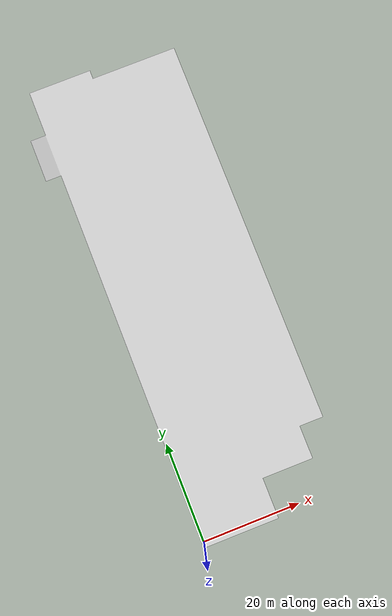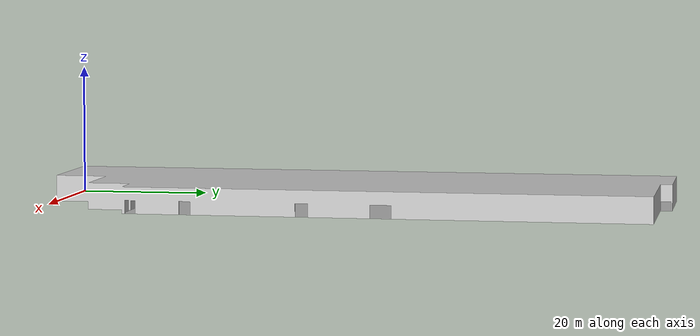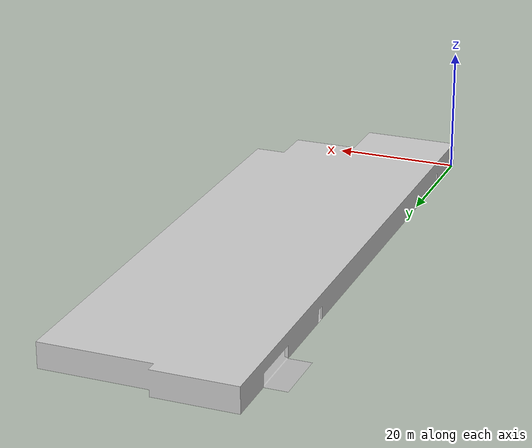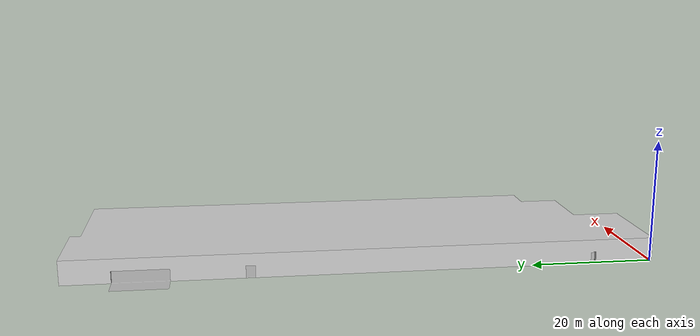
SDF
<?xml version='1.0'?>
<sdf version='1.7'>
  <model name='factory_v1'>

    <link name='link_0'>

      <pose>0 0 0 0 0 0</pose>
      <gravity>1</gravity>
      <self_collide>0</self_collide>
      <kinematic>0</kinematic>
      <enable_wind>0</enable_wind>

      <visual name='visual'>
        <pose>0 0 0 0 0 0</pose>
        <geometry>
          <mesh>
            <uri>model://factory_v1/meshes/factory.dae</uri>
            <scale>1 1 1</scale>
          </mesh>
        </geometry>
        <transparency>0</transparency>
        <cast_shadows>1</cast_shadows>
      </visual>

      <collision name='collision'>
        <laser_retro>0</laser_retro>
        <max_contacts>10</max_contacts>
        <pose>0 0 0 0 0 0</pose>
        <geometry>
          <mesh>
            <uri>model://factory_v1/meshes/factory.dae</uri>
            <scale>1 1 1</scale>
          </mesh>
        </geometry>
        <surface>
          <friction>
            <ode>
              <mu>1</mu>
              <mu2>1</mu2>
              <fdir1>0 0 0</fdir1>
              <slip1>0</slip1>
              <slip2>0</slip2>
            </ode>
            <torsional>
              <coefficient>1</coefficient>
              <patch_radius>0</patch_radius>
              <surface_radius>0</surface_radius>
              <use_patch_radius>1</use_patch_radius>
              <ode>
                <slip>0</slip>
              </ode>
            </torsional>
          </friction>
          <contact>
            <collide_without_contact>0</collide_without_contact>
            <collide_without_contact_bitmask>1</collide_without_contact_bitmask>
            <collide_bitmask>1</collide_bitmask>
            <ode>
              <soft_cfm>0</soft_cfm>
              <soft_erp>0.2</soft_erp>
              <kp>1e+13</kp>
              <kd>1</kd>
              <max_vel>0.01</max_vel>
              <min_depth>0</min_depth>
            </ode>
          </contact>
        </surface>
      </collision>

    </link>
    <static>1</static>
    <allow_auto_disable>1</allow_auto_disable>
  </model>
</sdf>
